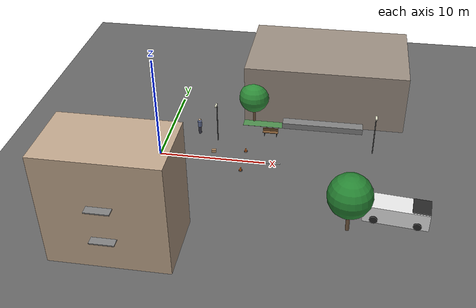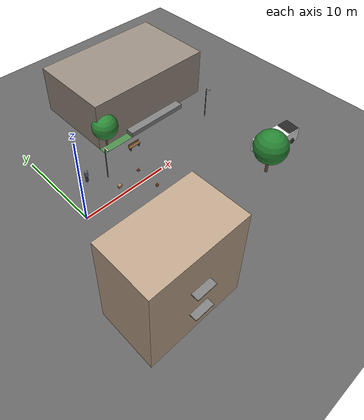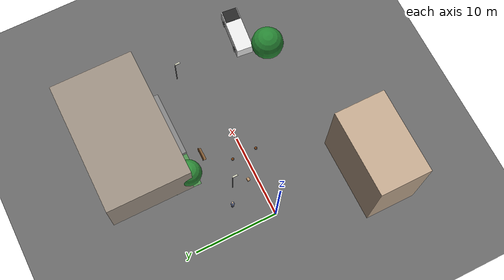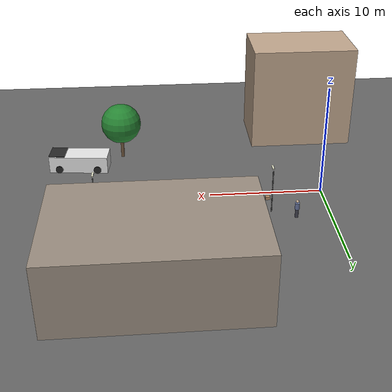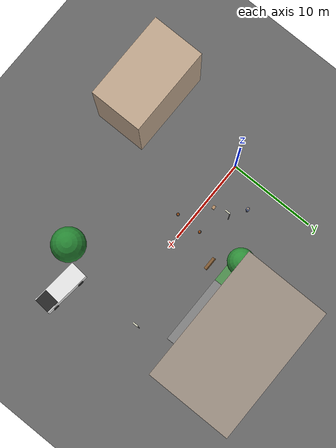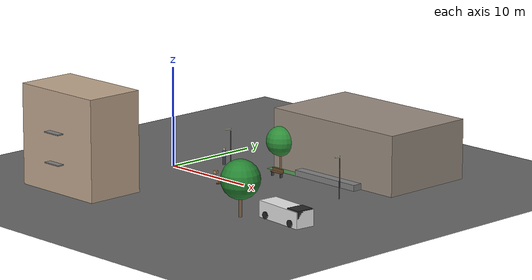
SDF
<sdf version="1.6">
 <world name="delivery_campus">
  <model name="ground_plane">
   <static>true</static>
   <link name="ground_link">
    <collision name="collision">
     <geometry><plane><normal>0 0 1</normal><size>100 100</size></plane></geometry>
     <surface><friction><ode><mu>100</mu><mu2>50</mu2></ode></friction></surface>
    </collision>
    <visual name="visual">
     <geometry><plane><normal>0 0 1</normal><size>100 100</size></plane></geometry>
     <material>
      <ambient>0.3 0.3 0.3 1</ambient>
      <diffuse>0.4 0.4 0.4 1</diffuse>
      <specular>0.1 0.1 0.1 1</specular>
     </material>
    </visual>
   </link>
  </model>
  <model name="center_line_4">
   <static>true</static>
   <pose>5 0 0.02 0 0 0</pose>
   <link name="line_link">
    <visual name="visual">
     <geometry><box><size>3 0.1 0.01</size></box></geometry>
     <material><ambient>0.9 0.9 0.9 1</ambient><diffuse>1 1 1 1</diffuse></material>
    </visual>
   </link>
  </model>
  <model name="center_line_5">
   <static>true</static>
   <pose>10 0 0.02 0 0 0</pose>
   <link name="line_link">
    <visual name="visual">
     <geometry><box><size>3 0.1 0.01</size></box></geometry>
     <material><ambient>0.9 0.9 0.9 1</ambient><diffuse>1 1 1 1</diffuse></material>
    </visual>
   </link>
  </model>
  <model name="building_warehouse">
   <static>true</static>
   <pose>15 12 0 0 0 0</pose>
   <link name="building_link">
    <visual name="main_visual">
     <pose>0 0 3 0 0 0</pose>
     <geometry><box><size>16 10 6</size></box></geometry>
     <material>
      <ambient>0.5 0.45 0.4 1</ambient>
      <diffuse>0.6 0.55 0.5 1</diffuse>
      <specular>0.1 0.1 0.1 1</specular>
     </material>
    </visual>
    <collision name="main_collision">
     <pose>0 0 3 0 0 0</pose>
     <geometry><box><size>16 10 6</size></box></geometry>
    </collision>
    <visual name="loading_dock">
     <pose>0 -5.5 0.3 0 0 0</pose>
     <geometry><box><size>8 1 0.6</size></box></geometry>
     <material><ambient>0.4 0.4 0.4 1</ambient><diffuse>0.5 0.5 0.5 1</diffuse></material>
    </visual>
    <collision name="loading_dock_collision">
     <pose>0 -5.5 0.3 0 0 0</pose>
     <geometry><box><size>8 1 0.6</size></box></geometry>
    </collision>
   </link>
  </model>
  <model name="building_apartment">
   <static>true</static>
   <pose>0 -12 0 0 0 0</pose>
   <link name="building_link">
    <visual name="main_visual">
     <pose>0 0 5 0 0 0</pose>
     <geometry><box><size>10 6 10</size></box></geometry>
     <material>
      <ambient>0.65 0.55 0.45 1</ambient>
      <diffuse>0.75 0.65 0.55 1</diffuse>
      <specular>0.1 0.1 0.1 1</specular>
     </material>
    </visual>
    <collision name="main_collision">
     <pose>0 0 5 0 0 0</pose>
     <geometry><box><size>10 6 10</size></box></geometry>
    </collision>
    <visual name="balcony_1">
     <pose>0 -3.3 3 0 0 0</pose>
     <geometry><box><size>2 0.8 0.1</size></box></geometry>
     <material><ambient>0.4 0.4 0.4 1</ambient><diffuse>0.5 0.5 0.5 1</diffuse></material>
    </visual>
    <visual name="balcony_2">
     <pose>0 -3.3 6 0 0 0</pose>
     <geometry><box><size>2 0.8 0.1</size></box></geometry>
     <material><ambient>0.4 0.4 0.4 1</ambient><diffuse>0.5 0.5 0.5 1</diffuse></material>
    </visual>
   </link>
  </model>
  <model name="tree_3">
   <static>true</static>
   <pose>8 7 0 0 0 1.2</pose>
   <link name="tree_link">
    <visual name="trunk">
     <pose>0 0 1 0 0 0</pose>
     <geometry><cylinder><radius>0.12</radius><length>2</length></cylinder></geometry>
     <material><ambient>0.35 0.25 0.15 1</ambient><diffuse>0.45 0.35 0.25 1</diffuse></material>
    </visual>
    <collision name="trunk_collision">
     <pose>0 0 1 0 0 0</pose>
     <geometry><cylinder><radius>0.12</radius><length>2</length></cylinder></geometry>
    </collision>
    <visual name="canopy">
     <pose>0 0 2.8 0 0 0</pose>
     <geometry><sphere><radius>1.5</radius></sphere></geometry>
     <material><ambient>0.12 0.42 0.15 1</ambient><diffuse>0.18 0.55 0.22 1</diffuse></material>
    </visual>
   </link>
  </model>
  <model name="tree_5">
   <static>true</static>
   <pose>18 -8 0 0 0 2.1</pose>
   <link name="tree_link">
    <visual name="trunk">
     <pose>0 0 1.4 0 0 0</pose>
     <geometry><cylinder><radius>0.16</radius><length>2.8</length></cylinder></geometry>
     <material><ambient>0.35 0.25 0.15 1</ambient><diffuse>0.45 0.35 0.25 1</diffuse></material>
    </visual>
    <collision name="trunk_collision">
     <pose>0 0 1.4 0 0 0</pose>
     <geometry><cylinder><radius>0.16</radius><length>2.8</length></cylinder></geometry>
    </collision>
    <visual name="canopy">
     <pose>0 0 3.6 0 0 0</pose>
     <geometry><sphere><radius>1.9</radius></sphere></geometry>
     <material><ambient>0.1 0.4 0.15 1</ambient><diffuse>0.15 0.52 0.2 1</diffuse></material>
    </visual>
   </link>
  </model>
  <model name="street_light_2">
   <static>true</static>
   <pose>5 3 0 0 0 0</pose>
   <link name="light_link">
    <visual name="pole">
     <pose>0 0 2 0 0 0</pose>
     <geometry><cylinder><radius>0.05</radius><length>4</length></cylinder></geometry>
     <material><ambient>0.3 0.3 0.3 1</ambient><diffuse>0.4 0.4 0.4 1</diffuse></material>
    </visual>
    <collision name="pole_collision">
     <pose>0 0 2 0 0 0</pose>
     <geometry><cylinder><radius>0.05</radius><length>4</length></cylinder></geometry>
    </collision>
    <visual name="lamp">
     <pose>0 -0.3 4.2 0 0 0</pose>
     <geometry><box><size>0.15 0.6 0.1</size></box></geometry>
     <material><ambient>0.8 0.8 0.7 1</ambient><diffuse>0.9 0.9 0.8 1</diffuse></material>
    </visual>
   </link>
  </model>
  <model name="street_light_3">
   <static>true</static>
   <pose>20 3 0 0 0 0</pose>
   <link name="light_link">
    <visual name="pole">
     <pose>0 0 2 0 0 0</pose>
     <geometry><cylinder><radius>0.05</radius><length>4</length></cylinder></geometry>
     <material><ambient>0.3 0.3 0.3 1</ambient><diffuse>0.4 0.4 0.4 1</diffuse></material>
    </visual>
    <collision name="pole_collision">
     <pose>0 0 2 0 0 0</pose>
     <geometry><cylinder><radius>0.05</radius><length>4</length></cylinder></geometry>
    </collision>
    <visual name="lamp">
     <pose>0 -0.3 4.2 0 0 0</pose>
     <geometry><box><size>0.15 0.6 0.1</size></box></geometry>
     <material><ambient>0.8 0.8 0.7 1</ambient><diffuse>0.9 0.9 0.8 1</diffuse></material>
    </visual>
   </link>
  </model>
  <model name="bench_2">
   <static>true</static>
   <pose>10 4.5 0 0 0 0</pose>
   <link name="bench_link">
    <visual name="seat">
     <pose>0 0 0.45 0 0 0</pose>
     <geometry><box><size>1.5 0.4 0.05</size></box></geometry>
     <material><ambient>0.4 0.25 0.15 1</ambient><diffuse>0.5 0.35 0.2 1</diffuse></material>
    </visual>
    <collision name="seat_collision">
     <pose>0 0 0.45 0 0 0</pose>
     <geometry><box><size>1.5 0.4 0.05</size></box></geometry>
    </collision>
    <visual name="back">
     <pose>0 0.15 0.65 0.2 0 0</pose>
     <geometry><box><size>1.5 0.05 0.35</size></box></geometry>
     <material><ambient>0.4 0.25 0.15 1</ambient><diffuse>0.5 0.35 0.2 1</diffuse></material>
    </visual>
    <visual name="leg_1">
     <pose>-0.6 0 0.22 0 0 0</pose>
     <geometry><box><size>0.05 0.35 0.44</size></box></geometry>
     <material><ambient>0.2 0.2 0.2 1</ambient><diffuse>0.3 0.3 0.3 1</diffuse></material>
    </visual>
    <visual name="leg_2">
     <pose>0.6 0 0.22 0 0 0</pose>
     <geometry><box><size>0.05 0.35 0.44</size></box></geometry>
     <material><ambient>0.2 0.2 0.2 1</ambient><diffuse>0.3 0.3 0.3 1</diffuse></material>
    </visual>
   </link>
  </model>
  <model name="package_1">
   <pose>5 1 0.15 0 0 0.1</pose>
   <link name="package_link">
    <inertial>
     <mass>2.0</mass>
     <inertia><ixx>0.01</ixx><ixy>0</ixy><ixz>0</ixz><iyy>0.01</iyy><iyz>0</iyz><izz>0.01</izz></inertia>
    </inertial>
    <visual name="visual">
     <geometry><box><size>0.4 0.3 0.3</size></box></geometry>
     <material><ambient>0.6 0.45 0.3 1</ambient><diffuse>0.7 0.55 0.4 1</diffuse></material>
    </visual>
    <collision name="collision"><geometry><box><size>0.4 0.3 0.3</size></box></geometry></collision>
   </link>
  </model>
  <model name="cone_1">
   <static>true</static>
   <pose>8 1.5 0 0 0 0</pose>
   <link name="cone_link">
    <visual name="base_visual">
     <pose>0 0 0.02 0 0 0</pose>
     <geometry><cylinder><radius>0.18</radius><length>0.04</length></cylinder></geometry>
     <material><ambient>0.1 0.1 0.1 1</ambient><diffuse>0.15 0.15 0.15 1</diffuse></material>
    </visual>
    <visual name="cone_bottom">
     <pose>0 0 0.08 0 0 0</pose>
     <geometry><cylinder><radius>0.12</radius><length>0.08</length></cylinder></geometry>
     <material><ambient>0.9 0.4 0.1 1</ambient><diffuse>1 0.5 0.15 1</diffuse></material>
    </visual>
    <visual name="cone_middle">
     <pose>0 0 0.18 0 0 0</pose>
     <geometry><cylinder><radius>0.08</radius><length>0.12</length></cylinder></geometry>
     <material><ambient>0.9 0.4 0.1 1</ambient><diffuse>1 0.5 0.15 1</diffuse></material>
    </visual>
    <visual name="cone_top">
     <pose>0 0 0.30 0 0 0</pose>
     <geometry><cylinder><radius>0.04</radius><length>0.12</length></cylinder></geometry>
     <material><ambient>0.9 0.4 0.1 1</ambient><diffuse>1 0.5 0.15 1</diffuse></material>
    </visual>
    <visual name="stripe">
     <pose>0 0 0.22 0 0 0</pose>
     <geometry><cylinder><radius>0.085</radius><length>0.03</length></cylinder></geometry>
     <material><ambient>0.9 0.9 0.9 1</ambient><diffuse>1 1 1 1</diffuse></material>
    </visual>
    <collision name="collision">
     <pose>0 0 0.18 0 0 0</pose>
     <geometry><cylinder><radius>0.15</radius><length>0.36</length></cylinder></geometry>
    </collision>
   </link>
  </model>
  <model name="cone_2">
   <static>true</static>
   <pose>8 -1.5 0 0 0 0</pose>
   <link name="cone_link">
    <visual name="base_visual">
     <pose>0 0 0.02 0 0 0</pose>
     <geometry><cylinder><radius>0.18</radius><length>0.04</length></cylinder></geometry>
     <material><ambient>0.1 0.1 0.1 1</ambient><diffuse>0.15 0.15 0.15 1</diffuse></material>
    </visual>
    <visual name="cone_bottom">
     <pose>0 0 0.08 0 0 0</pose>
     <geometry><cylinder><radius>0.12</radius><length>0.08</length></cylinder></geometry>
     <material><ambient>0.9 0.4 0.1 1</ambient><diffuse>1 0.5 0.15 1</diffuse></material>
    </visual>
    <visual name="cone_middle">
     <pose>0 0 0.18 0 0 0</pose>
     <geometry><cylinder><radius>0.08</radius><length>0.12</length></cylinder></geometry>
     <material><ambient>0.9 0.4 0.1 1</ambient><diffuse>1 0.5 0.15 1</diffuse></material>
    </visual>
    <visual name="cone_top">
     <pose>0 0 0.30 0 0 0</pose>
     <geometry><cylinder><radius>0.04</radius><length>0.12</length></cylinder></geometry>
     <material><ambient>0.9 0.4 0.1 1</ambient><diffuse>1 0.5 0.15 1</diffuse></material>
    </visual>
    <visual name="stripe">
     <pose>0 0 0.22 0 0 0</pose>
     <geometry><cylinder><radius>0.085</radius><length>0.03</length></cylinder></geometry>
     <material><ambient>0.9 0.9 0.9 1</ambient><diffuse>1 1 1 1</diffuse></material>
    </visual>
    <collision name="collision">
     <pose>0 0 0.18 0 0 0</pose>
     <geometry><cylinder><radius>0.15</radius><length>0.36</length></cylinder></geometry>
    </collision>
   </link>
  </model>
  <model name="parked_van">
   <static>true</static>
   <pose>22 -6 0 0 0 -0.1</pose>
   <link name="van_link">
    <visual name="body">
     <pose>0 0 0.8 0 0 0</pose>
     <geometry><box><size>5.5 2.0 1.6</size></box></geometry>
     <material>
      <ambient>0.8 0.8 0.8 1</ambient>
      <diffuse>0.9 0.9 0.9 1</diffuse>
      <specular>0.3 0.3 0.3 1</specular>
     </material>
    </visual>
    <collision name="body_collision">
     <pose>0 0 0.8 0 0 0</pose>
     <geometry><box><size>5.5 2.0 1.6</size></box></geometry>
    </collision>
    <visual name="cabin">
     <pose>2.0 0 1.2 0 0 0</pose>
     <geometry><box><size>1.5 1.8 1.0</size></box></geometry>
     <material>
      <ambient>0.1 0.1 0.1 1</ambient>
      <diffuse>0.15 0.15 0.15 1</diffuse>
      <specular>0.6 0.6 0.6 1</specular>
     </material>
    </visual>
    <visual name="wheel_fl">
     <pose>1.8 1.0 0.35 1.57 0 0</pose>
     <geometry><cylinder><radius>0.35</radius><length>0.22</length></cylinder></geometry>
     <material><ambient>0.1 0.1 0.1 1</ambient><diffuse>0.15 0.15 0.15 1</diffuse></material>
    </visual>
    <visual name="wheel_fr">
     <pose>1.8 -1.0 0.35 1.57 0 0</pose>
     <geometry><cylinder><radius>0.35</radius><length>0.22</length></cylinder></geometry>
     <material><ambient>0.1 0.1 0.1 1</ambient><diffuse>0.15 0.15 0.15 1</diffuse></material>
    </visual>
    <visual name="wheel_rl">
     <pose>-1.8 1.0 0.35 1.57 0 0</pose>
     <geometry><cylinder><radius>0.35</radius><length>0.22</length></cylinder></geometry>
     <material><ambient>0.1 0.1 0.1 1</ambient><diffuse>0.15 0.15 0.15 1</diffuse></material>
    </visual>
    <visual name="wheel_rr">
     <pose>-1.8 -1.0 0.35 1.57 0 0</pose>
     <geometry><cylinder><radius>0.35</radius><length>0.22</length></cylinder></geometry>
     <material><ambient>0.1 0.1 0.1 1</ambient><diffuse>0.15 0.15 0.15 1</diffuse></material>
    </visual>
   </link>
  </model>
  <model name="pedestrian_1">
   <static>true</static>
   <pose>3 4 0 0 0 -1.2</pose>
   <link name="person_link">
    <visual name="torso">
     <pose>0 0 1.1 0 0 0</pose>
     <geometry><cylinder><radius>0.2</radius><length>0.6</length></cylinder></geometry>
     <material><ambient>0.3 0.35 0.5 1</ambient><diffuse>0.4 0.45 0.6 1</diffuse></material>
    </visual>
    <visual name="head">
     <pose>0 0 1.55 0 0 0</pose>
     <geometry><sphere><radius>0.12</radius></sphere></geometry>
     <material><ambient>0.7 0.6 0.5 1</ambient><diffuse>0.8 0.7 0.6 1</diffuse></material>
    </visual>
    <visual name="legs">
     <pose>0 0 0.4 0 0 0</pose>
     <geometry><cylinder><radius>0.15</radius><length>0.8</length></cylinder></geometry>
     <material><ambient>0.2 0.2 0.25 1</ambient><diffuse>0.25 0.25 0.3 1</diffuse></material>
    </visual>
    <collision name="collision">
     <pose>0 0 0.9 0 0 0</pose>
     <geometry><cylinder><radius>0.25</radius><length>1.8</length></cylinder></geometry>
    </collision>
   </link>
  </model>
  <model name="grass_area_2">
   <static>true</static>
   <pose>10 8 0.005 0 0 0</pose>
   <link name="grass_link">
    <visual name="visual">
     <geometry><box><size>6 4 0.01</size></box></geometry>
     <material><ambient>0.2 0.45 0.2 1</ambient><diffuse>0.3 0.55 0.3 1</diffuse></material>
    </visual>
   </link>
  </model>
 </world>
</sdf>
